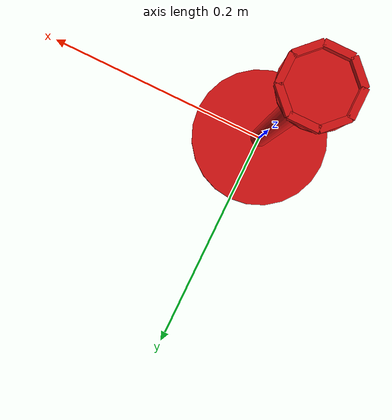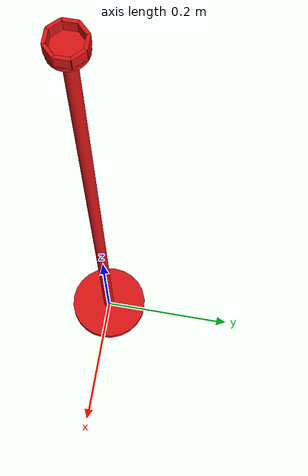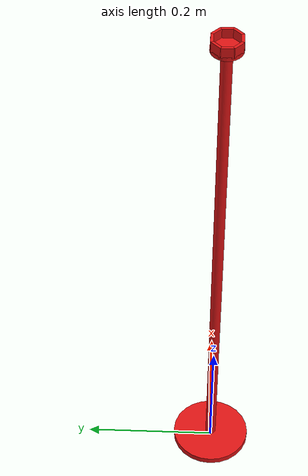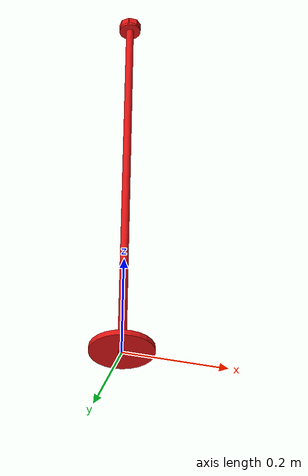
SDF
<?xml version="1.0"?>
<sdf version="1.9">
  <model name="sauvc_flare_red">
    <static>false</static>
    <plugin filename="gz-sim-label-system" name="gz::sim::systems::Label">
      <label>4</label>
    </plugin>
    <link name="pole">
      <pose>0 0 0.4 0 0 0</pose>
      <inertial>
        <pose>0 0 0 0 0 0</pose>
        <mass>0.02</mass>
        <inertia>
          <ixx>0.00106699</ixx><ixy>0</ixy><ixz>0</ixz>
          <iyy>0.00106699</iyy><iyz>0</iyz>
          <izz>6.4e-07</izz>
        </inertia>
      </inertial>
      <visual name="pole_visual">
        <pose>0 0 0 0 0 0</pose>
        <geometry><cylinder><radius>0.008</radius><length>0.8</length></cylinder></geometry>
        <material>
          <ambient>0.88 0.08 0.08 1</ambient>
          <diffuse>0.88 0.08 0.08 1</diffuse>
          <specular>0.55 0.55 0.55 1</specular>
          <emissive>0.246 0.0224 0.0224 1</emissive>
          <pbr>
            <metal>
              <albedo_map>model://sauvc_textures/albedo_pvc.png</albedo_map>
              <metalness>0.0</metalness>
              <roughness_map>model://sauvc_textures/rough_pvc.png</roughness_map>
              <normal_map>model://sauvc_textures/norm_pvc.png</normal_map>
            </metal>
          </pbr>
        </material>
      </visual>
      <collision name="pole_collision">
        <pose>0 0 0 0 0 0</pose>
        <geometry><cylinder><radius>0.008</radius><length>0.8</length></cylinder></geometry>
      </collision>
    </link>
    <link name="cup_floor">
      <pose>0 0 0.803 0 0 0</pose>
      <inertial>
        <pose>0 0 0 0 0 0</pose>
        <mass>0.008</mass>
        <inertia>
          <ixx>1.02909e-06</ixx><ixy>0</ixy><ixz>0</ixz>
          <iyy>1.02909e-06</iyy><iyz>0</iyz>
          <izz>2.01018e-06</izz>
        </inertia>
      </inertial>
      <visual name="cup_floor_visual">
        <pose>0 0 0 0 0 0</pose>
        <geometry><cylinder><radius>0.0224175</radius><length>0.006</length></cylinder></geometry>
        <material>
          <ambient>0.88 0.08 0.08 1</ambient>
          <diffuse>0.88 0.08 0.08 1</diffuse>
          <specular>0.55 0.55 0.55 1</specular>
          <emissive>0.246 0.0224 0.0224 1</emissive>
          <pbr>
            <metal>
              <albedo_map>model://sauvc_textures/albedo_pvc.png</albedo_map>
              <metalness>0.0</metalness>
              <roughness_map>model://sauvc_textures/rough_pvc.png</roughness_map>
              <normal_map>model://sauvc_textures/norm_pvc.png</normal_map>
            </metal>
          </pbr>
        </material>
      </visual>
      <collision name="cup_floor_collision">
        <pose>0 0 0 0 0 0</pose>
        <geometry><cylinder><radius>0.0224175</radius><length>0.006</length></cylinder></geometry>
      </collision>
    </link>
    <link name="base">
      <pose>0 0 0.005 0 0 0</pose>
      <inertial>
        <pose>0 0 0 0 0 0</pose>
        <mass>0.6</mass>
        <inertia>
          <ixx>0.000545</ixx><ixy>0</ixy><ixz>0</ixz>
          <iyy>0.000545</iyy><iyz>0</iyz>
          <izz>0.00108</izz>
        </inertia>
      </inertial>
      <visual name="base_visual">
        <pose>0 0 0 0 0 0</pose>
        <geometry><cylinder><radius>0.06</radius><length>0.01</length></cylinder></geometry>
        <material>
          <ambient>0.88 0.08 0.08 1</ambient>
          <diffuse>0.88 0.08 0.08 1</diffuse>
          <specular>0.55 0.55 0.55 1</specular>
          <emissive>0.246 0.0224 0.0224 1</emissive>
          <pbr>
            <metal>
              <albedo_map>model://sauvc_textures/albedo_pvc.png</albedo_map>
              <metalness>0.0</metalness>
              <roughness_map>model://sauvc_textures/rough_pvc.png</roughness_map>
              <normal_map>model://sauvc_textures/norm_pvc.png</normal_map>
            </metal>
          </pbr>
        </material>
      </visual>
      <collision name="base_collision">
        <pose>0 0 0 0 0 0</pose>
        <geometry><cylinder><radius>0.06</radius><length>0.01</length></cylinder></geometry>
        <surface>
          <friction>
            <ode><mu>0.8</mu><mu2>0.8</mu2></ode>
            <bullet><friction>0.8</friction><friction2>0.8</friction2></bullet>
          </friction>
        </surface>
      </collision>
    </link>
    <link name="cup_rim_0">
      <pose>0.019642 0 0.812 0 0 0</pose>
      <inertial>
        <pose>0 0 0 0 0 0</pose>
        <mass>0.0015</mass>
        <inertia>
          <ixx>6.68433e-08</ixx><ixy>0</ixy><ixz>0</ixz>
          <iyy>3.4e-08</iyy><iyz>0</iyz>
          <izz>3.68433e-08</izz>
        </inertia>
      </inertial>
      <visual name="cup_rim_0_visual">
        <pose>0 0 0 0 0 0</pose>
        <geometry><box><size>0.004 0.0166957 0.016</size></box></geometry>
        <material>
          <ambient>0.88 0.08 0.08 1</ambient>
          <diffuse>0.88 0.08 0.08 1</diffuse>
          <specular>0.55 0.55 0.55 1</specular>
          <emissive>0.246 0.0224 0.0224 1</emissive>
          <pbr>
            <metal>
              <albedo_map>model://sauvc_textures/albedo_pvc.png</albedo_map>
              <metalness>0.0</metalness>
              <roughness_map>model://sauvc_textures/rough_pvc.png</roughness_map>
              <normal_map>model://sauvc_textures/norm_pvc.png</normal_map>
            </metal>
          </pbr>
        </material>
      </visual>
      <collision name="cup_rim_0_collision">
        <pose>0 0 0 0 0 0</pose>
        <geometry><box><size>0.004 0.0166957 0.016</size></box></geometry>
      </collision>
    </link>
    <link name="cup_rim_1">
      <pose>0.013889 0.013889 0.812 0 0 0.785398</pose>
      <inertial>
        <pose>0 0 0 0 0 0</pose>
        <mass>0.0015</mass>
        <inertia>
          <ixx>6.68433e-08</ixx><ixy>0</ixy><ixz>0</ixz>
          <iyy>3.4e-08</iyy><iyz>0</iyz>
          <izz>3.68433e-08</izz>
        </inertia>
      </inertial>
      <visual name="cup_rim_1_visual">
        <pose>0 0 0 0 0 0</pose>
        <geometry><box><size>0.004 0.0166957 0.016</size></box></geometry>
        <material>
          <ambient>0.88 0.08 0.08 1</ambient>
          <diffuse>0.88 0.08 0.08 1</diffuse>
          <specular>0.55 0.55 0.55 1</specular>
          <emissive>0.246 0.0224 0.0224 1</emissive>
          <pbr>
            <metal>
              <albedo_map>model://sauvc_textures/albedo_pvc.png</albedo_map>
              <metalness>0.0</metalness>
              <roughness_map>model://sauvc_textures/rough_pvc.png</roughness_map>
              <normal_map>model://sauvc_textures/norm_pvc.png</normal_map>
            </metal>
          </pbr>
        </material>
      </visual>
      <collision name="cup_rim_1_collision">
        <pose>0 0 0 0 0 0</pose>
        <geometry><box><size>0.004 0.0166957 0.016</size></box></geometry>
      </collision>
    </link>
    <link name="cup_rim_2">
      <pose>1.20273e-18 0.019642 0.812 0 0 1.5708</pose>
      <inertial>
        <pose>0 0 0 0 0 0</pose>
        <mass>0.0015</mass>
        <inertia>
          <ixx>6.68433e-08</ixx><ixy>0</ixy><ixz>0</ixz>
          <iyy>3.4e-08</iyy><iyz>0</iyz>
          <izz>3.68433e-08</izz>
        </inertia>
      </inertial>
      <visual name="cup_rim_2_visual">
        <pose>0 0 0 0 0 0</pose>
        <geometry><box><size>0.004 0.0166957 0.016</size></box></geometry>
        <material>
          <ambient>0.88 0.08 0.08 1</ambient>
          <diffuse>0.88 0.08 0.08 1</diffuse>
          <specular>0.55 0.55 0.55 1</specular>
          <emissive>0.246 0.0224 0.0224 1</emissive>
          <pbr>
            <metal>
              <albedo_map>model://sauvc_textures/albedo_pvc.png</albedo_map>
              <metalness>0.0</metalness>
              <roughness_map>model://sauvc_textures/rough_pvc.png</roughness_map>
              <normal_map>model://sauvc_textures/norm_pvc.png</normal_map>
            </metal>
          </pbr>
        </material>
      </visual>
      <collision name="cup_rim_2_collision">
        <pose>0 0 0 0 0 0</pose>
        <geometry><box><size>0.004 0.0166957 0.016</size></box></geometry>
      </collision>
    </link>
    <link name="cup_rim_3">
      <pose>-0.013889 0.013889 0.812 0 0 2.35619</pose>
      <inertial>
        <pose>0 0 0 0 0 0</pose>
        <mass>0.0015</mass>
        <inertia>
          <ixx>6.68433e-08</ixx><ixy>0</ixy><ixz>0</ixz>
          <iyy>3.4e-08</iyy><iyz>0</iyz>
          <izz>3.68433e-08</izz>
        </inertia>
      </inertial>
      <visual name="cup_rim_3_visual">
        <pose>0 0 0 0 0 0</pose>
        <geometry><box><size>0.004 0.0166957 0.016</size></box></geometry>
        <material>
          <ambient>0.88 0.08 0.08 1</ambient>
          <diffuse>0.88 0.08 0.08 1</diffuse>
          <specular>0.55 0.55 0.55 1</specular>
          <emissive>0.246 0.0224 0.0224 1</emissive>
          <pbr>
            <metal>
              <albedo_map>model://sauvc_textures/albedo_pvc.png</albedo_map>
              <metalness>0.0</metalness>
              <roughness_map>model://sauvc_textures/rough_pvc.png</roughness_map>
              <normal_map>model://sauvc_textures/norm_pvc.png</normal_map>
            </metal>
          </pbr>
        </material>
      </visual>
      <collision name="cup_rim_3_collision">
        <pose>0 0 0 0 0 0</pose>
        <geometry><box><size>0.004 0.0166957 0.016</size></box></geometry>
      </collision>
    </link>
    <link name="cup_rim_4">
      <pose>-0.019642 2.40545e-18 0.812 0 0 3.14159</pose>
      <inertial>
        <pose>0 0 0 0 0 0</pose>
        <mass>0.0015</mass>
        <inertia>
          <ixx>6.68433e-08</ixx><ixy>0</ixy><ixz>0</ixz>
          <iyy>3.4e-08</iyy><iyz>0</iyz>
          <izz>3.68433e-08</izz>
        </inertia>
      </inertial>
      <visual name="cup_rim_4_visual">
        <pose>0 0 0 0 0 0</pose>
        <geometry><box><size>0.004 0.0166957 0.016</size></box></geometry>
        <material>
          <ambient>0.88 0.08 0.08 1</ambient>
          <diffuse>0.88 0.08 0.08 1</diffuse>
          <specular>0.55 0.55 0.55 1</specular>
          <emissive>0.246 0.0224 0.0224 1</emissive>
          <pbr>
            <metal>
              <albedo_map>model://sauvc_textures/albedo_pvc.png</albedo_map>
              <metalness>0.0</metalness>
              <roughness_map>model://sauvc_textures/rough_pvc.png</roughness_map>
              <normal_map>model://sauvc_textures/norm_pvc.png</normal_map>
            </metal>
          </pbr>
        </material>
      </visual>
      <collision name="cup_rim_4_collision">
        <pose>0 0 0 0 0 0</pose>
        <geometry><box><size>0.004 0.0166957 0.016</size></box></geometry>
      </collision>
    </link>
    <link name="cup_rim_5">
      <pose>-0.013889 -0.013889 0.812 0 0 3.92699</pose>
      <inertial>
        <pose>0 0 0 0 0 0</pose>
        <mass>0.0015</mass>
        <inertia>
          <ixx>6.68433e-08</ixx><ixy>0</ixy><ixz>0</ixz>
          <iyy>3.4e-08</iyy><iyz>0</iyz>
          <izz>3.68433e-08</izz>
        </inertia>
      </inertial>
      <visual name="cup_rim_5_visual">
        <pose>0 0 0 0 0 0</pose>
        <geometry><box><size>0.004 0.0166957 0.016</size></box></geometry>
        <material>
          <ambient>0.88 0.08 0.08 1</ambient>
          <diffuse>0.88 0.08 0.08 1</diffuse>
          <specular>0.55 0.55 0.55 1</specular>
          <emissive>0.246 0.0224 0.0224 1</emissive>
          <pbr>
            <metal>
              <albedo_map>model://sauvc_textures/albedo_pvc.png</albedo_map>
              <metalness>0.0</metalness>
              <roughness_map>model://sauvc_textures/rough_pvc.png</roughness_map>
              <normal_map>model://sauvc_textures/norm_pvc.png</normal_map>
            </metal>
          </pbr>
        </material>
      </visual>
      <collision name="cup_rim_5_collision">
        <pose>0 0 0 0 0 0</pose>
        <geometry><box><size>0.004 0.0166957 0.016</size></box></geometry>
      </collision>
    </link>
    <link name="cup_rim_6">
      <pose>-3.60818e-18 -0.019642 0.812 0 0 4.71239</pose>
      <inertial>
        <pose>0 0 0 0 0 0</pose>
        <mass>0.0015</mass>
        <inertia>
          <ixx>6.68433e-08</ixx><ixy>0</ixy><ixz>0</ixz>
          <iyy>3.4e-08</iyy><iyz>0</iyz>
          <izz>3.68433e-08</izz>
        </inertia>
      </inertial>
      <visual name="cup_rim_6_visual">
        <pose>0 0 0 0 0 0</pose>
        <geometry><box><size>0.004 0.0166957 0.016</size></box></geometry>
        <material>
          <ambient>0.88 0.08 0.08 1</ambient>
          <diffuse>0.88 0.08 0.08 1</diffuse>
          <specular>0.55 0.55 0.55 1</specular>
          <emissive>0.246 0.0224 0.0224 1</emissive>
          <pbr>
            <metal>
              <albedo_map>model://sauvc_textures/albedo_pvc.png</albedo_map>
              <metalness>0.0</metalness>
              <roughness_map>model://sauvc_textures/rough_pvc.png</roughness_map>
              <normal_map>model://sauvc_textures/norm_pvc.png</normal_map>
            </metal>
          </pbr>
        </material>
      </visual>
      <collision name="cup_rim_6_collision">
        <pose>0 0 0 0 0 0</pose>
        <geometry><box><size>0.004 0.0166957 0.016</size></box></geometry>
      </collision>
    </link>
    <link name="cup_rim_7">
      <pose>0.013889 -0.013889 0.812 0 0 5.49779</pose>
      <inertial>
        <pose>0 0 0 0 0 0</pose>
        <mass>0.0015</mass>
        <inertia>
          <ixx>6.68433e-08</ixx><ixy>0</ixy><ixz>0</ixz>
          <iyy>3.4e-08</iyy><iyz>0</iyz>
          <izz>3.68433e-08</izz>
        </inertia>
      </inertial>
      <visual name="cup_rim_7_visual">
        <pose>0 0 0 0 0 0</pose>
        <geometry><box><size>0.004 0.0166957 0.016</size></box></geometry>
        <material>
          <ambient>0.88 0.08 0.08 1</ambient>
          <diffuse>0.88 0.08 0.08 1</diffuse>
          <specular>0.55 0.55 0.55 1</specular>
          <emissive>0.246 0.0224 0.0224 1</emissive>
          <pbr>
            <metal>
              <albedo_map>model://sauvc_textures/albedo_pvc.png</albedo_map>
              <metalness>0.0</metalness>
              <roughness_map>model://sauvc_textures/rough_pvc.png</roughness_map>
              <normal_map>model://sauvc_textures/norm_pvc.png</normal_map>
            </metal>
          </pbr>
        </material>
      </visual>
      <collision name="cup_rim_7_collision">
        <pose>0 0 0 0 0 0</pose>
        <geometry><box><size>0.004 0.0166957 0.016</size></box></geometry>
      </collision>
    </link>
    <joint name="base_pole_fix" type="fixed">
      <parent>base</parent>
      <child>pole</child>
    </joint>
    <joint name="base_cup_floor_fix" type="fixed">
      <parent>base</parent>
      <child>cup_floor</child>
    </joint>
    <joint name="base_cup_rim_0_fix" type="fixed">
      <parent>base</parent>
      <child>cup_rim_0</child>
    </joint>
    <joint name="base_cup_rim_1_fix" type="fixed">
      <parent>base</parent>
      <child>cup_rim_1</child>
    </joint>
    <joint name="base_cup_rim_2_fix" type="fixed">
      <parent>base</parent>
      <child>cup_rim_2</child>
    </joint>
    <joint name="base_cup_rim_3_fix" type="fixed">
      <parent>base</parent>
      <child>cup_rim_3</child>
    </joint>
    <joint name="base_cup_rim_4_fix" type="fixed">
      <parent>base</parent>
      <child>cup_rim_4</child>
    </joint>
    <joint name="base_cup_rim_5_fix" type="fixed">
      <parent>base</parent>
      <child>cup_rim_5</child>
    </joint>
    <joint name="base_cup_rim_6_fix" type="fixed">
      <parent>base</parent>
      <child>cup_rim_6</child>
    </joint>
    <joint name="base_cup_rim_7_fix" type="fixed">
      <parent>base</parent>
      <child>cup_rim_7</child>
    </joint>
    <plugin filename="gz-sim-hydrodynamics-system" name="gz::sim::systems::Hydrodynamics">
      <link_name>pole</link_name>
      <water_density>1000.0</water_density>
      <xUabsU>-6.4</xUabsU>
      <yVabsV>-6.4</yVabsV>
      <zWabsW>-0.100531</zWabsW>
      <kPabsP>-0.8192</kPabsP>
      <mQabsQ>-0.8192</mQabsQ>
      <nRabsR>-0.8192</nRabsR>
    </plugin>
  </model>
</sdf>
